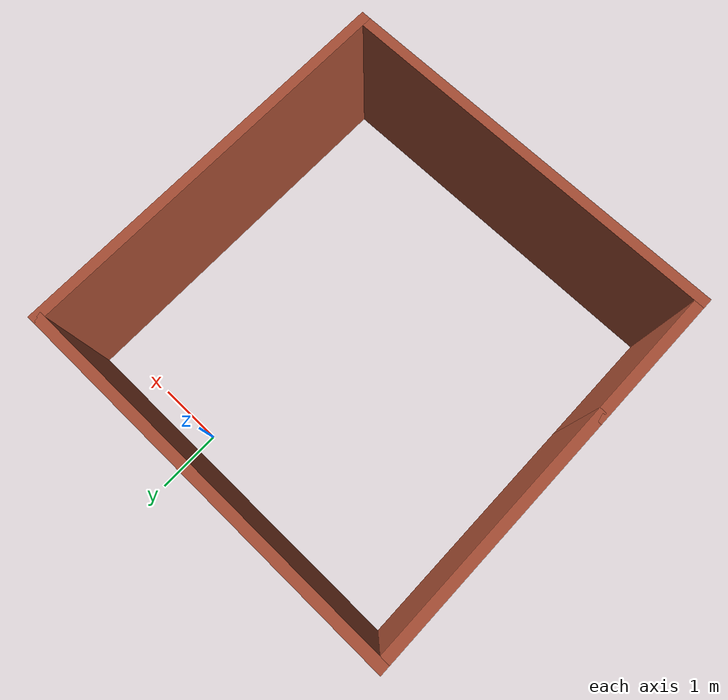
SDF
<?xml version='1.0'?>
<sdf version='1.6'>
  <model name='walls'>
    <pose frame=''>-0.828621 -2.56552 0 0 -0 0</pose>
    <link name='Wall_0'>
      <collision name='Wall_0_Collision'>
        <geometry>
          <box>
            <size>4 0.15 2.5</size>
          </box>
        </geometry>
        <pose frame=''>0 0 1.25 0 -0 0</pose>
      </collision>
      <visual name='Wall_0_Visual'>
        <pose frame=''>0 0 1.25 0 -0 0</pose>
        <geometry>
          <box>
            <size>4 0.15 2.5</size>
          </box>
        </geometry>
        <material>
          <script>
            <uri>file://media/materials/scripts/gazebo.material</uri>
            <name>Gazebo/Bricks</name>
          </script>
          <ambient>1 1 1 1</ambient>
        </material>
        <meta>
          <layer>0</layer>
        </meta>
      </visual>
      <pose frame=''>-2.925 1 0 0 -0 1.5708</pose>
    </link>
    <link name='Wall_1'>
      <collision name='Wall_1_Collision'>
        <geometry>
          <box>
            <size>6 0.15 2.5</size>
          </box>
        </geometry>
        <pose frame=''>0 0 1.25 0 -0 0</pose>
      </collision>
      <visual name='Wall_1_Visual'>
        <pose frame=''>0 0 1.25 0 -0 0</pose>
        <geometry>
          <box>
            <size>6 0.15 2.5</size>
          </box>
        </geometry>
        <material>
          <script>
            <uri>file://media/materials/scripts/gazebo.material</uri>
            <name>Gazebo/Bricks</name>
          </script>
          <ambient>1 1 1 1</ambient>
        </material>
        <meta>
          <layer>0</layer>
        </meta>
      </visual>
      <pose frame=''>0 2.925 0 0 -0 0</pose>
    </link>
    <link name='Wall_2'>
      <collision name='Wall_2_Collision'>
        <geometry>
          <box>
            <size>6 0.15 2.5</size>
          </box>
        </geometry>
        <pose frame=''>0 0 1.25 0 -0 0</pose>
      </collision>
      <visual name='Wall_2_Visual'>
        <pose frame=''>0 0 1.25 0 -0 0</pose>
        <geometry>
          <box>
            <size>6 0.15 2.5</size>
          </box>
        </geometry>
        <material>
          <script>
            <uri>file://media/materials/scripts/gazebo.material</uri>
            <name>Gazebo/Bricks</name>
          </script>
          <ambient>1 1 1 1</ambient>
        </material>
        <meta>
          <layer>0</layer>
        </meta>
      </visual>
      <pose frame=''>2.925 0 0 0 -0 -1.5708</pose>
    </link>
    <link name='Wall_3'>
      <collision name='Wall_3_Collision'>
        <geometry>
          <box>
            <size>6 0.15 2.5</size>
          </box>
        </geometry>
        <pose frame=''>0 0 1.25 0 -0 0</pose>
      </collision>
      <visual name='Wall_3_Visual'>
        <pose frame=''>0 0 1.25 0 -0 0</pose>
        <geometry>
          <box>
            <size>6 0.15 2.5</size>
          </box>
        </geometry>
        <material>
          <script>
            <uri>file://media/materials/scripts/gazebo.material</uri>
            <name>Gazebo/Bricks</name>
          </script>
          <ambient>1 1 1 1</ambient>
        </material>
        <meta>
          <layer>0</layer>
        </meta>
      </visual>
      <pose frame=''>0 -2.925 0 0 -0 3.14159</pose>
    </link>
    <link name='Wall_4'>
      <collision name='Wall_4_Collision'>
        <geometry>
          <box>
            <size>2.15 0.15 2.5</size>
          </box>
        </geometry>
        <pose frame=''>0 0 1.25 0 -0 0</pose>
      </collision>
      <visual name='Wall_4_Visual'>
        <pose frame=''>0 0 1.25 0 -0 0</pose>
        <geometry>
          <box>
            <size>2.15 0.15 2.5</size>
          </box>
        </geometry>
        <material>
          <script>
            <uri>file://media/materials/scripts/gazebo.material</uri>
            <name>Gazebo/Bricks</name>
          </script>
          <ambient>1 1 1 1</ambient>
        </material>
        <meta>
          <layer>0</layer>
        </meta>
      </visual>
      <pose frame=''>-2.925 -1.925 0 0 -0 1.5708</pose>
    </link>
    <static>1</static>
  </model>
</sdf>
